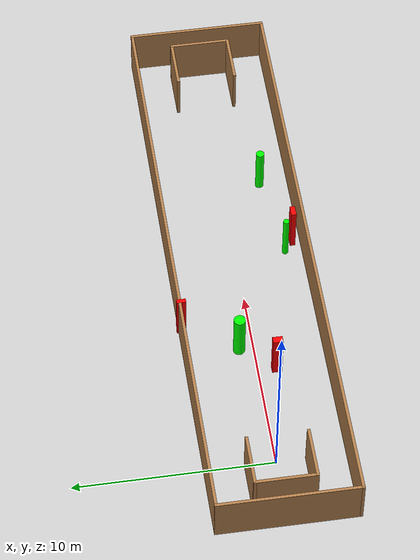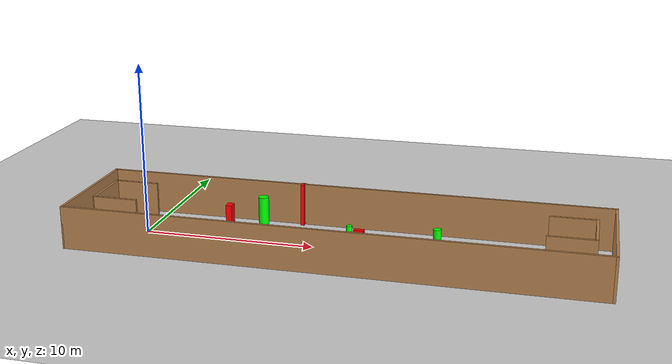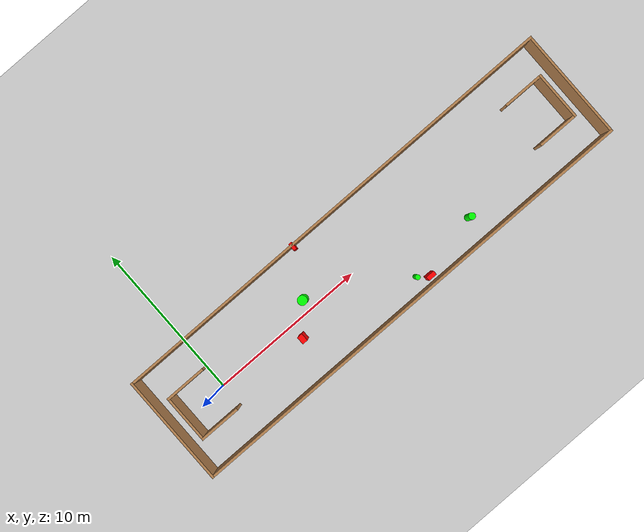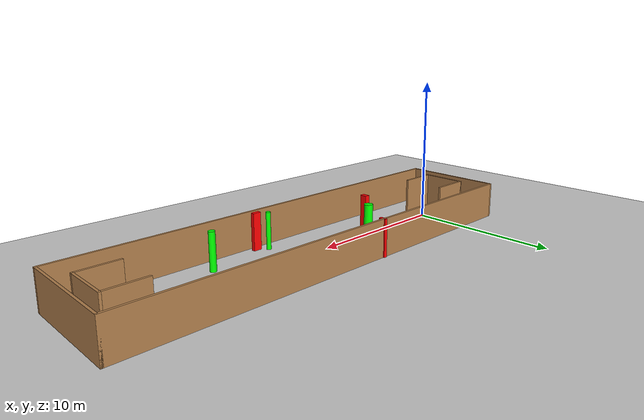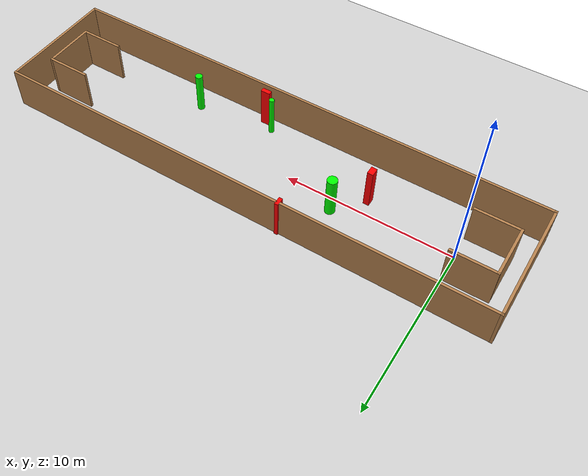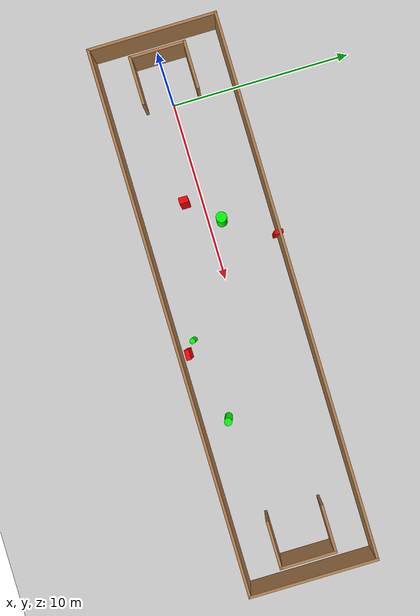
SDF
<sdf version="1.7">
 <world name="default">
  <light name="sun" type="directional">
   <pose>0 0 10 0 -0 0</pose>
   <diffuse>0.8 0.8 0.8 1</diffuse>
   <specular>0.2 0.2 0.2 1</specular>
   <attenuation>
    <range>1000</range>
    <constant>0.9</constant>
    <linear>0.01</linear>
    <quadratic>0.001</quadratic>
   </attenuation>
   <direction>-0.5 0.1 -0.9</direction>
   <spot><inner_angle>0</inner_angle><outer_angle>0</outer_angle><falloff>0</falloff></spot>
  </light>
  <model name="ground_plane">
   <static>1</static>
   <link name="link">
    <collision name="collision">
     <geometry><plane><normal>0 0 1</normal><size>100 100</size></plane></geometry>
     <surface>
      <contact><collide_bitmask>65535</collide_bitmask></contact>
      <friction><ode><mu>100</mu><mu2>50</mu2></ode></friction>
     </surface>
    </collision>
    <visual name="visual">
     <cast_shadows>0</cast_shadows>
     <geometry><plane><normal>0 0 1</normal><size>100 100</size></plane></geometry>
     <material>
      <script><uri>file://media/materials/scripts/gazebo.material</uri><name>Gazebo/Grey</name></script>
     </material>
    </visual>
   </link>
  </model>
  <gravity>0 0 -9.8</gravity>
  <magnetic_field>6e-06 2.3e-05 -4.2e-05</magnetic_field>
  <atmosphere type="adiabatic"/>
  <physics type="ode">
   <max_step_size>0.001</max_step_size>
   <real_time_factor>1</real_time_factor>
   <real_time_update_rate>1000</real_time_update_rate>
  </physics>
  <scene><ambient>0.4 0.4 0.4 1</ambient><background>0.7 0.7 0.7 1</background><shadows>1</shadows></scene>
  <spherical_coordinates>
   <surface_model>EARTH_WGS84</surface_model>
   <latitude_deg>0</latitude_deg>
   <longitude_deg>0</longitude_deg>
   <elevation>0</elevation>
   <heading_deg>0</heading_deg>
  </spherical_coordinates>
  <model name="my_base_walls">
   <link name="Wall_0">
    <collision name="Wall_0_Collision">
     <geometry><box><size>7.15 0.15 2.5</size></box></geometry>
     <pose>0 0 1.25 0 -0 0</pose>
    </collision>
    <visual name="Wall_0_Visual">
     <pose>0 0 1.25 0 -0 0</pose>
     <geometry><box><size>7.15 0.15 2.5</size></box></geometry>
     <material>
      <script><uri>file://media/materials/scripts/gazebo.material</uri><name>Gazebo/Wood</name></script>
      <ambient>1 1 1 1</ambient>
     </material>
     <meta><layer>0</layer></meta>
    </visual>
    <pose>-15 0 0 0 -0 1.5708</pose>
   </link>
   <link name="Wall_10">
    <collision name="Wall_10_Collision">
     <geometry><box><size>2.65 0.15 2.5</size></box></geometry>
     <pose>0 0 1.25 0 -0 0</pose>
    </collision>
    <visual name="Wall_10_Visual">
     <pose>0 0 1.25 0 -0 0</pose>
     <geometry><box><size>2.65 0.15 2.5</size></box></geometry>
     <material>
      <script><uri>file://media/materials/scripts/gazebo.material</uri><name>Gazebo/Wood</name></script>
      <ambient>1 1 1 1</ambient>
     </material>
     <meta><layer>0</layer></meta>
    </visual>
    <pose>-12.75 -1.5 0 0 -0 0</pose>
   </link>
   <link name="Wall_12">
    <collision name="Wall_12_Collision">
     <geometry><box><size>2.65 0.15 2.5</size></box></geometry>
     <pose>0 0 1.25 0 -0 0</pose>
    </collision>
    <visual name="Wall_12_Visual">
     <pose>0 0 1.25 0 -0 0</pose>
     <geometry><box><size>2.65 0.15 2.5</size></box></geometry>
     <material>
      <script><uri>file://media/materials/scripts/gazebo.material</uri><name>Gazebo/Wood</name></script>
      <ambient>1 1 1 1</ambient>
     </material>
     <meta><layer>0</layer></meta>
    </visual>
    <pose>-12.75 1.5 0 0 -0 0</pose>
   </link>
   <link name="Wall_14">
    <collision name="Wall_14_Collision">
     <geometry><box><size>3.15 0.15 2.5</size></box></geometry>
     <pose>0 0 1.25 0 -0 0</pose>
    </collision>
    <visual name="Wall_14_Visual">
     <pose>0 0 1.25 0 -0 0</pose>
     <geometry><box><size>3.15 0.15 2.5</size></box></geometry>
     <material>
      <script><uri>file://media/materials/scripts/gazebo.material</uri><name>Gazebo/Wood</name></script>
      <ambient>1 1 1 1</ambient>
     </material>
     <meta><layer>0</layer></meta>
    </visual>
    <pose>14 0 0 0 -0 -1.5708</pose>
   </link>
   <link name="Wall_15">
    <collision name="Wall_15_Collision">
     <geometry><box><size>2.65 0.15 2.5</size></box></geometry>
     <pose>0 0 1.25 0 -0 0</pose>
    </collision>
    <visual name="Wall_15_Visual">
     <pose>0 0 1.25 0 -0 0</pose>
     <geometry><box><size>2.65 0.15 2.5</size></box></geometry>
     <material>
      <script><uri>file://media/materials/scripts/gazebo.material</uri><name>Gazebo/Wood</name></script>
      <ambient>1 1 1 1</ambient>
     </material>
     <meta><layer>0</layer></meta>
    </visual>
    <pose>12.75 -1.5 0 0 -0 3.14159</pose>
   </link>
   <link name="Wall_17">
    <collision name="Wall_17_Collision">
     <geometry><box><size>2.65 0.15 2.5</size></box></geometry>
     <pose>0 0 1.25 0 -0 0</pose>
    </collision>
    <visual name="Wall_17_Visual">
     <pose>0 0 1.25 0 -0 0</pose>
     <geometry><box><size>2.65 0.15 2.5</size></box></geometry>
     <material>
      <script><uri>file://media/materials/scripts/gazebo.material</uri><name>Gazebo/Wood</name></script>
      <ambient>1 1 1 1</ambient>
     </material>
     <meta><layer>0</layer></meta>
    </visual>
    <pose>12.75 1.5 0 0 -0 3.14159</pose>
   </link>
   <link name="Wall_2">
    <collision name="Wall_2_Collision">
     <geometry><box><size>30.15 0.15 2.5</size></box></geometry>
     <pose>0 0 1.25 0 -0 0</pose>
    </collision>
    <visual name="Wall_2_Visual">
     <pose>0 0 1.25 0 -0 0</pose>
     <geometry><box><size>30.15 0.15 2.5</size></box></geometry>
     <material>
      <script><uri>file://media/materials/scripts/gazebo.material</uri><name>Gazebo/Wood</name></script>
      <ambient>1 1 1 1</ambient>
     </material>
     <meta><layer>0</layer></meta>
    </visual>
    <pose>-0 -3.5 0 0 -0 0</pose>
   </link>
   <link name="Wall_4">
    <collision name="Wall_4_Collision">
     <geometry><box><size>30.15 0.15 2.5</size></box></geometry>
     <pose>0 0 1.25 0 -0 0</pose>
    </collision>
    <visual name="Wall_4_Visual">
     <pose>0 0 1.25 0 -0 0</pose>
     <geometry><box><size>30.15 0.15 2.5</size></box></geometry>
     <material>
      <script><uri>file://media/materials/scripts/gazebo.material</uri><name>Gazebo/Wood</name></script>
      <ambient>1 1 1 1</ambient>
     </material>
     <meta><layer>0</layer></meta>
    </visual>
    <pose>-0 3.5 0 0 -0 0</pose>
   </link>
   <link name="Wall_6">
    <collision name="Wall_6_Collision">
     <geometry><box><size>7.15 0.15 2.5</size></box></geometry>
     <pose>0 0 1.25 0 -0 0</pose>
    </collision>
    <visual name="Wall_6_Visual">
     <pose>0 0 1.25 0 -0 0</pose>
     <geometry><box><size>7.15 0.15 2.5</size></box></geometry>
     <material>
      <script><uri>file://media/materials/scripts/gazebo.material</uri><name>Gazebo/Wood</name></script>
      <ambient>1 1 1 1</ambient>
     </material>
     <meta><layer>0</layer></meta>
    </visual>
    <pose>15 0 0 0 -0 -1.5708</pose>
   </link>
   <link name="Wall_9">
    <collision name="Wall_9_Collision">
     <geometry><box><size>3.15 0.15 2.5</size></box></geometry>
     <pose>0 0 1.25 0 -0 0</pose>
    </collision>
    <visual name="Wall_9_Visual">
     <pose>0 0 1.25 0 -0 0</pose>
     <geometry><box><size>3.15 0.15 2.5</size></box></geometry>
     <material>
      <script><uri>file://media/materials/scripts/gazebo.material</uri><name>Gazebo/Wood</name></script>
      <ambient>1 1 1 1</ambient>
     </material>
     <meta><layer>0</layer></meta>
    </visual>
    <pose>-14 0 0 0 -0 -1.5708</pose>
   </link>
   <static>1</static>
   <pose>11.5 0 0 0 -0 0</pose>
  </model>
  <model name="cylinder1">
   <static>1</static>
   <link name="link">
    <inertial>
     <mass>1</mass>
     <inertia><ixx>0.5</ixx><ixy>0</ixy><ixz>0</ixz><iyy>0.5</iyy><iyz>0</iyz><izz>1</izz></inertia>
    </inertial>
    <collision name="collision">
     <geometry><cylinder><radius>0.29601559179454656</radius><length>2.5</length></cylinder></geometry>
    </collision>
    <visual name="visual">
     <geometry><cylinder><radius>0.29601559179454656</radius><length>2.5</length></cylinder></geometry>
     <material>
      <ambient>0 1 0 1</ambient>
      <diffuse>0 1 0 1</diffuse>
      <specular>0.1 0.1 0.1 1</specular>
      <emissive>0 0 0 0</emissive>
     </material>
    </visual>
   </link>
   <pose>6.919538020082861 0.7388402934401297 1.25 0 0 0</pose>
  </model>
  <model name="cylinder2">
   <static>1</static>
   <link name="link">
    <inertial>
     <mass>1</mass>
     <inertia><ixx>0.5</ixx><ixy>0</ixy><ixz>0</ixz><iyy>0.5</iyy><iyz>0</iyz><izz>1</izz></inertia>
    </inertial>
    <collision name="collision">
     <geometry><cylinder><radius>0.21125106791995926</radius><length>2.5</length></cylinder></geometry>
    </collision>
    <visual name="visual">
     <geometry><cylinder><radius>0.21125106791995926</radius><length>2.5</length></cylinder></geometry>
     <material>
      <ambient>0 1 0 1</ambient>
      <diffuse>0 1 0 1</diffuse>
      <specular>0.1 0.1 0.1 1</specular>
      <emissive>0 0 0 0</emissive>
     </material>
    </visual>
   </link>
   <pose>17.34296932734368 -1.9704361395440597 1.25 0 0 0</pose>
  </model>
  <model name="cylinder3">
   <static>1</static>
   <link name="link">
    <inertial>
     <mass>1</mass>
     <inertia><ixx>0.5</ixx><ixy>0</ixy><ixz>0</ixz><iyy>0.5</iyy><iyz>0</iyz><izz>1</izz></inertia>
    </inertial>
    <collision name="collision">
     <geometry><cylinder><radius>0.1526118587950618</radius><length>2.5</length></cylinder></geometry>
    </collision>
    <visual name="visual">
     <geometry><cylinder><radius>0.1526118587950618</radius><length>2.5</length></cylinder></geometry>
     <material>
      <ambient>0 1 0 1</ambient>
      <diffuse>0 1 0 1</diffuse>
      <specular>0.1 0.1 0.1 1</specular>
      <emissive>0 0 0 0</emissive>
     </material>
    </visual>
   </link>
   <pose>12.736515938237558 -2.569832644399171 1.25 0 0 0</pose>
  </model>
  <model name="box1">
   <static>1</static>
   <link name="link">
    <inertial>
     <mass>1</mass>
     <inertia><ixx>0.083</ixx><ixy>0</ixy><ixz>0</ixz><iyy>0.083</iyy><iyz>0</iyz><izz>0.083</izz></inertia>
    </inertial>
    <collision name="collision">
     <geometry><box><size>0.5571492260264856 0.26190549667098967 2.5</size></box></geometry>
    </collision>
    <visual name="visual">
     <geometry><box><size>0.5571492260264856 0.26190549667098967 2.5</size></box></geometry>
     <material>
      <ambient>1 0 0 1</ambient>
      <diffuse>1 0 0 1</diffuse>
      <specular>0.1 0.1 0.1 1</specular>
      <emissive>0 0 0 0</emissive>
     </material>
    </visual>
    <sensor name="my_contact" type="contact">
     <contact><collision>box_collision</collision><topic>__default_topic__</topic></contact>
    </sensor>
   </link>
   <pose>13.37311665725119 -3.0196069003469637 1.25 0 0 0</pose>
  </model>
  <model name="box2">
   <static>1</static>
   <link name="link">
    <inertial>
     <mass>1</mass>
     <inertia><ixx>0.083</ixx><ixy>0</ixy><ixz>0</ixz><iyy>0.083</iyy><iyz>0</iyz><izz>0.083</izz></inertia>
    </inertial>
    <collision name="collision">
     <geometry><box><size>0.2141172005953359 0.4711473235448357 2.5</size></box></geometry>
    </collision>
    <visual name="visual">
     <geometry><box><size>0.2141172005953359 0.4711473235448357 2.5</size></box></geometry>
     <material>
      <ambient>1 0 0 1</ambient>
      <diffuse>1 0 0 1</diffuse>
      <specular>0.1 0.1 0.1 1</specular>
      <emissive>0 0 0 0</emissive>
     </material>
    </visual>
    <sensor name="my_contact" type="contact">
     <contact><collision>box_collision</collision><topic>__default_topic__</topic></contact>
    </sensor>
   </link>
   <pose>8.509635868087276 3.421690098269586 1.25 0 0 0</pose>
  </model>
  <model name="box3">
   <static>1</static>
   <link name="link">
    <inertial>
     <mass>1</mass>
     <inertia><ixx>0.083</ixx><ixy>0</ixy><ixz>0</ixz><iyy>0.083</iyy><iyz>0</iyz><izz>0.083</izz></inertia>
    </inertial>
    <collision name="collision">
     <geometry><box><size>0.3429257820484669 0.49146928101300813 2.5</size></box></geometry>
    </collision>
    <visual name="visual">
     <geometry><box><size>0.3429257820484669 0.49146928101300813 2.5</size></box></geometry>
     <material>
      <ambient>1 0 0 1</ambient>
      <diffuse>1 0 0 1</diffuse>
      <specular>0.1 0.1 0.1 1</specular>
      <emissive>0 0 0 0</emissive>
     </material>
    </visual>
    <sensor name="my_contact" type="contact">
     <contact><collision>box_collision</collision><topic>__default_topic__</topic></contact>
    </sensor>
   </link>
   <pose>5.484528235854324 -0.9216506463345882 1.25 0 0 0</pose>
  </model>
 </world>
</sdf>
